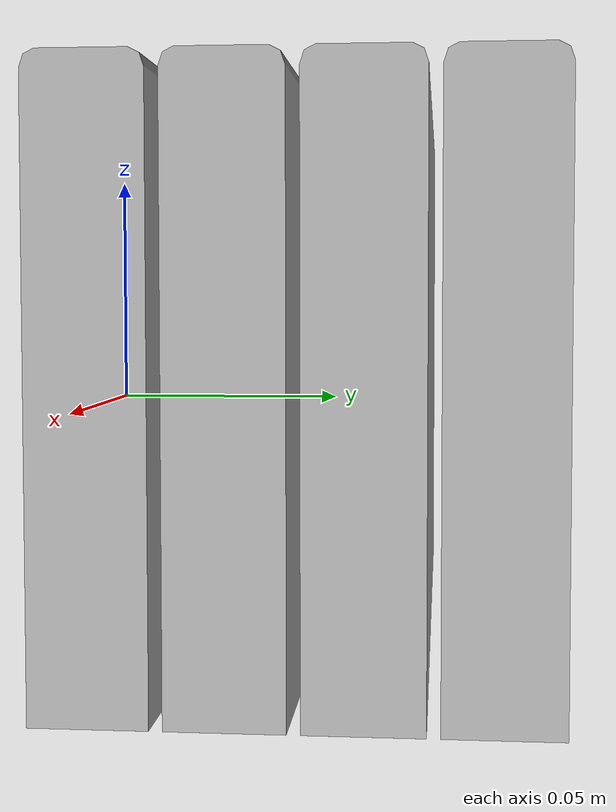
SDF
<?xml version="1.0" ?>
<sdf version="1.4">
  <model name="shelf3_book3_h4">
    <link name="body">
      <pose>0 0 0 0 0 0</pose>
      <inertial>
        <pose>  -0.001001   0.049001   0.006433 0 0 0</pose>
        <mass>0.5</mass>
        <inertia>
          <ixx>0.01</ixx>
          <ixy>0</ixy>
          <ixz>0</ixz>
          <iyy>0.01</iyy>
          <iyz>0</iyz>
          <izz>0.01</izz>
        </inertia>
      </inertial>
      <collision name="collision">
        <geometry>
          <mesh>
            <uri>model://bookshelf/shelf3_items/book3_h4/book3_h4.dae</uri>
          </mesh>
        </geometry>
      </collision>
      <visual name="visual">
        <geometry>
          <mesh>
            <uri>model://bookshelf/shelf3_items/book3_h4/book3_h4.dae</uri>
          </mesh>
        </geometry>
      </visual>
    </link>
  </model>
</sdf>
